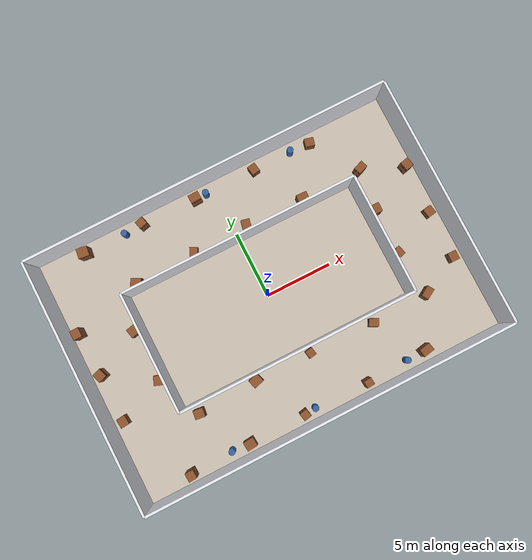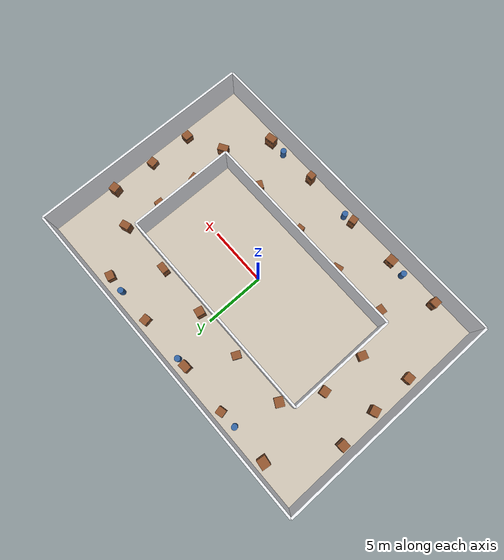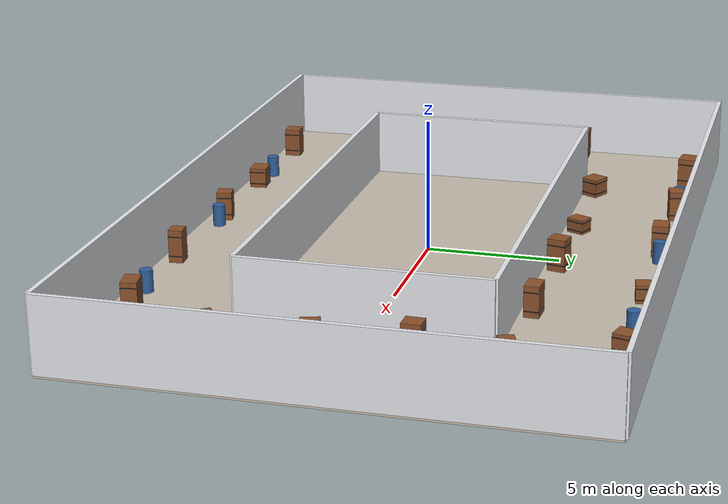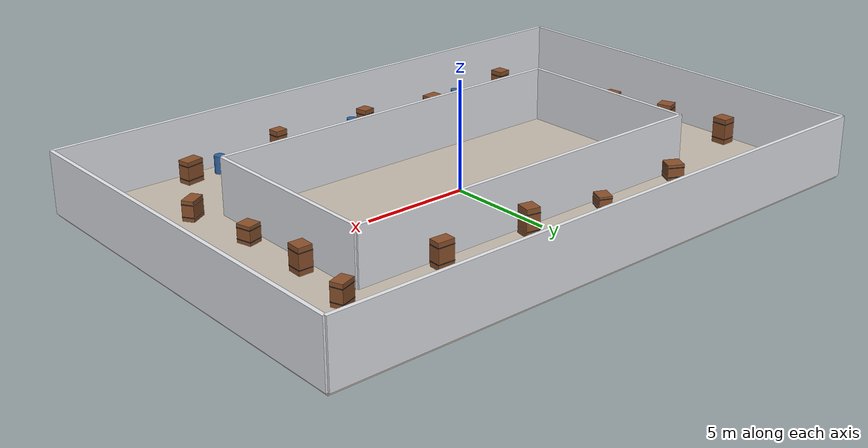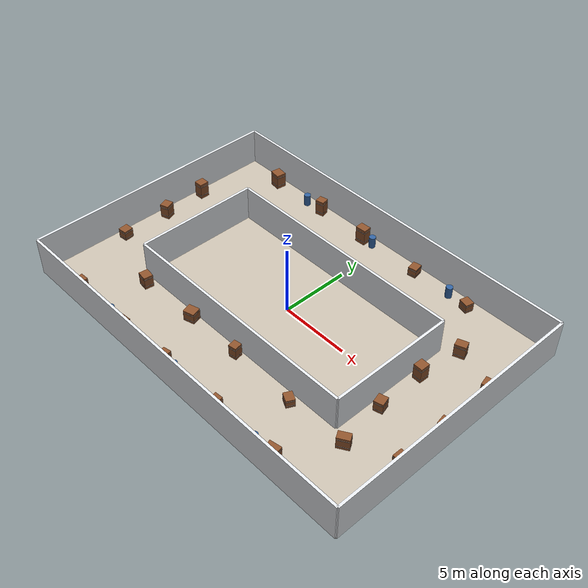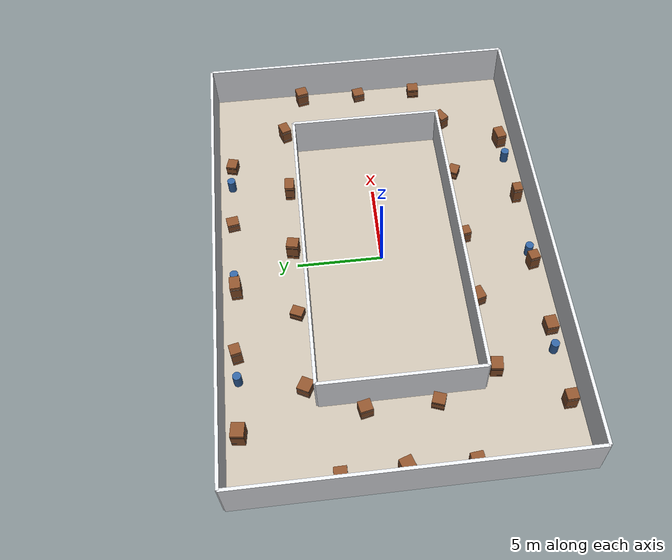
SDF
<sdf version="1.7">
 <world name="flat_M1">
  <model name="flat_M1_structure">
   <static>true</static>
   <link name="structure">
    <collision name="ground_floor_collision">
     <pose>0 0 -0.12 0 0 0</pose>
     <geometry><box><size>28 19 0.24</size></box></geometry>
     <max_contacts>40</max_contacts>
     <surface>
      <friction><ode><mu>2</mu><mu2>2</mu2></ode></friction>
      <contact><ode><kp>1e7</kp><kd>1000</kd><max_vel>0.1</max_vel><min_depth>0.001</min_depth></ode></contact>
     </surface>
    </collision>
    <visual name="ground_floor_visual">
     <pose>0 0 -0.12 0 0 0</pose>
     <geometry><box><size>28 19 0.24</size></box></geometry>
     <material><ambient>0.78 0.74 0.68 1</ambient><diffuse>0.78 0.74 0.68 1</diffuse></material>
    </visual>
    <collision name="outer_south_wall_0_collision">
     <pose>0 -9.5 1.28 0 0 0</pose>
     <geometry><box><size>28 0.18 2.8</size></box></geometry>
     <max_contacts>40</max_contacts>
     <surface>
      <friction><ode><mu>2</mu><mu2>2</mu2></ode></friction>
      <contact><ode><kp>1e7</kp><kd>1000</kd><max_vel>0.1</max_vel><min_depth>0.001</min_depth></ode></contact>
     </surface>
    </collision>
    <visual name="outer_south_wall_0_visual">
     <pose>0 -9.5 1.28 0 0 0</pose>
     <geometry><box><size>28 0.18 2.8</size></box></geometry>
     <material><ambient>0.90 0.91 0.93 1</ambient><diffuse>0.90 0.91 0.93 1</diffuse></material>
    </visual>
    <collision name="outer_north_wall_0_collision">
     <pose>0 9.5 1.28 0 0 0</pose>
     <geometry><box><size>28 0.18 2.8</size></box></geometry>
     <max_contacts>40</max_contacts>
     <surface>
      <friction><ode><mu>2</mu><mu2>2</mu2></ode></friction>
      <contact><ode><kp>1e7</kp><kd>1000</kd><max_vel>0.1</max_vel><min_depth>0.001</min_depth></ode></contact>
     </surface>
    </collision>
    <visual name="outer_north_wall_0_visual">
     <pose>0 9.5 1.28 0 0 0</pose>
     <geometry><box><size>28 0.18 2.8</size></box></geometry>
     <material><ambient>0.90 0.91 0.93 1</ambient><diffuse>0.90 0.91 0.93 1</diffuse></material>
    </visual>
    <collision name="outer_west_wall_0_collision">
     <pose>-14 0 1.28 0 0 1.57079633</pose>
     <geometry><box><size>19 0.18 2.8</size></box></geometry>
     <max_contacts>40</max_contacts>
     <surface>
      <friction><ode><mu>2</mu><mu2>2</mu2></ode></friction>
      <contact><ode><kp>1e7</kp><kd>1000</kd><max_vel>0.1</max_vel><min_depth>0.001</min_depth></ode></contact>
     </surface>
    </collision>
    <visual name="outer_west_wall_0_visual">
     <pose>-14 0 1.28 0 0 1.57079633</pose>
     <geometry><box><size>19 0.18 2.8</size></box></geometry>
     <material><ambient>0.90 0.91 0.93 1</ambient><diffuse>0.90 0.91 0.93 1</diffuse></material>
    </visual>
    <collision name="outer_east_wall_0_collision">
     <pose>14 0 1.28 0 0 1.57079633</pose>
     <geometry><box><size>19 0.18 2.8</size></box></geometry>
     <max_contacts>40</max_contacts>
     <surface>
      <friction><ode><mu>2</mu><mu2>2</mu2></ode></friction>
      <contact><ode><kp>1e7</kp><kd>1000</kd><max_vel>0.1</max_vel><min_depth>0.001</min_depth></ode></contact>
     </surface>
    </collision>
    <visual name="outer_east_wall_0_visual">
     <pose>14 0 1.28 0 0 1.57079633</pose>
     <geometry><box><size>19 0.18 2.8</size></box></geometry>
     <material><ambient>0.90 0.91 0.93 1</ambient><diffuse>0.90 0.91 0.93 1</diffuse></material>
    </visual>
    <collision name="courtyard_wall_0_collision">
     <pose>0 -4.5 1.23 0 0 0</pose>
     <geometry><box><size>18 0.18 2.7</size></box></geometry>
     <max_contacts>40</max_contacts>
     <surface>
      <friction><ode><mu>2</mu><mu2>2</mu2></ode></friction>
      <contact><ode><kp>1e7</kp><kd>1000</kd><max_vel>0.1</max_vel><min_depth>0.001</min_depth></ode></contact>
     </surface>
    </collision>
    <visual name="courtyard_wall_0_visual">
     <pose>0 -4.5 1.23 0 0 0</pose>
     <geometry><box><size>18 0.18 2.7</size></box></geometry>
     <material><ambient>0.90 0.91 0.93 1</ambient><diffuse>0.90 0.91 0.93 1</diffuse></material>
    </visual>
    <collision name="courtyard_wall_0_part1_collision">
     <pose>9 0 1.23 0 0 1.57079633</pose>
     <geometry><box><size>9 0.18 2.7</size></box></geometry>
     <max_contacts>40</max_contacts>
     <surface>
      <friction><ode><mu>2</mu><mu2>2</mu2></ode></friction>
      <contact><ode><kp>1e7</kp><kd>1000</kd><max_vel>0.1</max_vel><min_depth>0.001</min_depth></ode></contact>
     </surface>
    </collision>
    <visual name="courtyard_wall_0_part1_visual">
     <pose>9 0 1.23 0 0 1.57079633</pose>
     <geometry><box><size>9 0.18 2.7</size></box></geometry>
     <material><ambient>0.90 0.91 0.93 1</ambient><diffuse>0.90 0.91 0.93 1</diffuse></material>
    </visual>
    <collision name="courtyard_wall_0_part2_collision">
     <pose>0 4.5 1.23 0 0 3.14159265</pose>
     <geometry><box><size>18 0.18 2.7</size></box></geometry>
     <max_contacts>40</max_contacts>
     <surface>
      <friction><ode><mu>2</mu><mu2>2</mu2></ode></friction>
      <contact><ode><kp>1e7</kp><kd>1000</kd><max_vel>0.1</max_vel><min_depth>0.001</min_depth></ode></contact>
     </surface>
    </collision>
    <visual name="courtyard_wall_0_part2_visual">
     <pose>0 4.5 1.23 0 0 3.14159265</pose>
     <geometry><box><size>18 0.18 2.7</size></box></geometry>
     <material><ambient>0.90 0.91 0.93 1</ambient><diffuse>0.90 0.91 0.93 1</diffuse></material>
    </visual>
    <collision name="courtyard_wall_0_part3_collision">
     <pose>-9 0 1.23 0 0 -1.57079633</pose>
     <geometry><box><size>9 0.18 2.7</size></box></geometry>
     <max_contacts>40</max_contacts>
     <surface>
      <friction><ode><mu>2</mu><mu2>2</mu2></ode></friction>
      <contact><ode><kp>1e7</kp><kd>1000</kd><max_vel>0.1</max_vel><min_depth>0.001</min_depth></ode></contact>
     </surface>
    </collision>
    <visual name="courtyard_wall_0_part3_visual">
     <pose>-9 0 1.23 0 0 -1.57079633</pose>
     <geometry><box><size>9 0.18 2.7</size></box></geometry>
     <material><ambient>0.90 0.91 0.93 1</ambient><diffuse>0.90 0.91 0.93 1</diffuse></material>
    </visual>
    <collision name="corridor_crate0_prop_collision">
     <pose>-10.4391132 -8.74933051 0.584138986 0 0 0.0510764548</pose>
     <geometry><box><size>0.623898544 0.650770771 1.16827797</size></box></geometry>
     <max_contacts>40</max_contacts>
     <surface>
      <friction><ode><mu>2</mu><mu2>2</mu2></ode></friction>
      <contact><ode><kp>1e7</kp><kd>1000</kd><max_vel>0.1</max_vel><min_depth>0.001</min_depth></ode></contact>
     </surface>
    </collision>
    <visual name="corridor_crate0_prop_visual">
     <pose>-10.4391132 -8.74933051 0.584138986 0 0 0.0510764548</pose>
     <geometry><box><size>0.623898544 0.650770771 1.16827797</size></box></geometry>
     <material><ambient>0.55 0.32 0.17 1</ambient><diffuse>0.55 0.32 0.17 1</diffuse></material>
    </visual>
    <visual name="corridor_crate0_strap_-1_visual">
     <pose>-10.4391132 -8.74933051 0.233655594 0 0 0.0510764548</pose>
     <geometry><box><size>0.635898544 0.662770771 0.035</size></box></geometry>
     <material><ambient>0.15 0.18 0.21 1</ambient><diffuse>0.15 0.18 0.21 1</diffuse></material>
    </visual>
    <visual name="corridor_crate0_strap_1_visual">
     <pose>-10.4391132 -8.74933051 0.934622377 0 0 0.0510764548</pose>
     <geometry><box><size>0.635898544 0.662770771 0.035</size></box></geometry>
     <material><ambient>0.15 0.18 0.21 1</ambient><diffuse>0.15 0.18 0.21 1</diffuse></material>
    </visual>
    <collision name="corridor_crate1_prop_collision">
     <pose>-8.09571075 -5.24803806 0.485445364 0 0 -0.126055236</pose>
     <geometry><box><size>0.729410916 0.656473399 0.970890729</size></box></geometry>
     <max_contacts>40</max_contacts>
     <surface>
      <friction><ode><mu>2</mu><mu2>2</mu2></ode></friction>
      <contact><ode><kp>1e7</kp><kd>1000</kd><max_vel>0.1</max_vel><min_depth>0.001</min_depth></ode></contact>
     </surface>
    </collision>
    <visual name="corridor_crate1_prop_visual">
     <pose>-8.09571075 -5.24803806 0.485445364 0 0 -0.126055236</pose>
     <geometry><box><size>0.729410916 0.656473399 0.970890729</size></box></geometry>
     <material><ambient>0.55 0.32 0.17 1</ambient><diffuse>0.55 0.32 0.17 1</diffuse></material>
    </visual>
    <visual name="corridor_crate1_strap_-1_visual">
     <pose>-8.09571075 -5.24803806 0.194178146 0 0 -0.126055236</pose>
     <geometry><box><size>0.741410916 0.668473399 0.035</size></box></geometry>
     <material><ambient>0.15 0.18 0.21 1</ambient><diffuse>0.15 0.18 0.21 1</diffuse></material>
    </visual>
    <visual name="corridor_crate1_strap_1_visual">
     <pose>-8.09571075 -5.24803806 0.776712583 0 0 -0.126055236</pose>
     <geometry><box><size>0.741410916 0.668473399 0.035</size></box></geometry>
     <material><ambient>0.15 0.18 0.21 1</ambient><diffuse>0.15 0.18 0.21 1</diffuse></material>
    </visual>
    <collision name="corridor_bin_prop2_collision">
     <pose>-7.24571075 -8.65 0.42 0 0 0</pose>
     <geometry><cylinder><radius>0.24</radius><length>0.84</length></cylinder></geometry>
     <max_contacts>40</max_contacts>
     <surface>
      <friction><ode><mu>2</mu><mu2>2</mu2></ode></friction>
      <contact><ode><kp>1e7</kp><kd>1000</kd><max_vel>0.1</max_vel><min_depth>0.001</min_depth></ode></contact>
     </surface>
    </collision>
    <visual name="corridor_bin_prop2_visual">
     <pose>-7.24571075 -8.65 0.42 0 0 0</pose>
     <geometry><cylinder><radius>0.24</radius><length>0.84</length></cylinder></geometry>
     <material><ambient>0.19 0.38 0.62 1</ambient><diffuse>0.19 0.38 0.62 1</diffuse></material>
    </visual>
    <collision name="corridor_crate3_prop_collision">
     <pose>-5.87313101 -8.76571012 0.40294038 0 0 0.0885721272</pose>
     <geometry><box><size>0.788195609 0.672251853 0.805880761</size></box></geometry>
     <max_contacts>40</max_contacts>
     <surface>
      <friction><ode><mu>2</mu><mu2>2</mu2></ode></friction>
      <contact><ode><kp>1e7</kp><kd>1000</kd><max_vel>0.1</max_vel><min_depth>0.001</min_depth></ode></contact>
     </surface>
    </collision>
    <visual name="corridor_crate3_prop_visual">
     <pose>-5.87313101 -8.76571012 0.40294038 0 0 0.0885721272</pose>
     <geometry><box><size>0.788195609 0.672251853 0.805880761</size></box></geometry>
     <material><ambient>0.55 0.32 0.17 1</ambient><diffuse>0.55 0.32 0.17 1</diffuse></material>
    </visual>
    <visual name="corridor_crate3_strap_-1_visual">
     <pose>-5.87313101 -8.76571012 0.161176152 0 0 0.0885721272</pose>
     <geometry><box><size>0.800195609 0.684251853 0.035</size></box></geometry>
     <material><ambient>0.15 0.18 0.21 1</ambient><diffuse>0.15 0.18 0.21 1</diffuse></material>
    </visual>
    <visual name="corridor_crate3_strap_1_visual">
     <pose>-5.87313101 -8.76571012 0.644704609 0 0 0.0885721272</pose>
     <geometry><box><size>0.800195609 0.684251853 0.035</size></box></geometry>
     <material><ambient>0.15 0.18 0.21 1</ambient><diffuse>0.15 0.18 0.21 1</diffuse></material>
    </visual>
    <collision name="corridor_crate4_prop_collision">
     <pose>-3.53114342 -5.04508739 0.40932202 0 0 0.28860341</pose>
     <geometry><box><size>0.806827167 0.709404613 0.818644041</size></box></geometry>
     <max_contacts>40</max_contacts>
     <surface>
      <friction><ode><mu>2</mu><mu2>2</mu2></ode></friction>
      <contact><ode><kp>1e7</kp><kd>1000</kd><max_vel>0.1</max_vel><min_depth>0.001</min_depth></ode></contact>
     </surface>
    </collision>
    <visual name="corridor_crate4_prop_visual">
     <pose>-3.53114342 -5.04508739 0.40932202 0 0 0.28860341</pose>
     <geometry><box><size>0.806827167 0.709404613 0.818644041</size></box></geometry>
     <material><ambient>0.55 0.32 0.17 1</ambient><diffuse>0.55 0.32 0.17 1</diffuse></material>
    </visual>
    <visual name="corridor_crate4_strap_-1_visual">
     <pose>-3.53114342 -5.04508739 0.163728808 0 0 0.28860341</pose>
     <geometry><box><size>0.818827167 0.721404613 0.035</size></box></geometry>
     <material><ambient>0.15 0.18 0.21 1</ambient><diffuse>0.15 0.18 0.21 1</diffuse></material>
    </visual>
    <visual name="corridor_crate4_strap_1_visual">
     <pose>-3.53114342 -5.04508739 0.654915233 0 0 0.28860341</pose>
     <geometry><box><size>0.818827167 0.721404613 0.035</size></box></geometry>
     <material><ambient>0.15 0.18 0.21 1</ambient><diffuse>0.15 0.18 0.21 1</diffuse></material>
    </visual>
    <collision name="corridor_crate5_prop_collision">
     <pose>-1.52325666 -8.69519261 0.567213205 0 0 0.193719696</pose>
     <geometry><box><size>0.589987426 0.591617913 1.13442641</size></box></geometry>
     <max_contacts>40</max_contacts>
     <surface>
      <friction><ode><mu>2</mu><mu2>2</mu2></ode></friction>
      <contact><ode><kp>1e7</kp><kd>1000</kd><max_vel>0.1</max_vel><min_depth>0.001</min_depth></ode></contact>
     </surface>
    </collision>
    <visual name="corridor_crate5_prop_visual">
     <pose>-1.52325666 -8.69519261 0.567213205 0 0 0.193719696</pose>
     <geometry><box><size>0.589987426 0.591617913 1.13442641</size></box></geometry>
     <material><ambient>0.55 0.32 0.17 1</ambient><diffuse>0.55 0.32 0.17 1</diffuse></material>
    </visual>
    <visual name="corridor_crate5_strap_-1_visual">
     <pose>-1.52325666 -8.69519261 0.226885282 0 0 0.193719696</pose>
     <geometry><box><size>0.601987426 0.603617913 0.035</size></box></geometry>
     <material><ambient>0.15 0.18 0.21 1</ambient><diffuse>0.15 0.18 0.21 1</diffuse></material>
    </visual>
    <visual name="corridor_crate5_strap_1_visual">
     <pose>-1.52325666 -8.69519261 0.907541128 0 0 0.193719696</pose>
     <geometry><box><size>0.601987426 0.603617913 0.035</size></box></geometry>
     <material><ambient>0.15 0.18 0.21 1</ambient><diffuse>0.15 0.18 0.21 1</diffuse></material>
    </visual>
    <collision name="corridor_bin_prop6_collision">
     <pose>-0.673256663 -8.65 0.42 0 0 0</pose>
     <geometry><cylinder><radius>0.24</radius><length>0.84</length></cylinder></geometry>
     <max_contacts>40</max_contacts>
     <surface>
      <friction><ode><mu>2</mu><mu2>2</mu2></ode></friction>
      <contact><ode><kp>1e7</kp><kd>1000</kd><max_vel>0.1</max_vel><min_depth>0.001</min_depth></ode></contact>
     </surface>
    </collision>
    <visual name="corridor_bin_prop6_visual">
     <pose>-0.673256663 -8.65 0.42 0 0 0</pose>
     <geometry><cylinder><radius>0.24</radius><length>0.84</length></cylinder></geometry>
     <material><ambient>0.19 0.38 0.62 1</ambient><diffuse>0.19 0.38 0.62 1</diffuse></material>
    </visual>
    <collision name="corridor_crate7_prop_collision">
     <pose>0.795353508 -5.06970358 0.485820954 0 0 0.159231207</pose>
     <geometry><box><size>0.569680961 0.587635797 0.971641908</size></box></geometry>
     <max_contacts>40</max_contacts>
     <surface>
      <friction><ode><mu>2</mu><mu2>2</mu2></ode></friction>
      <contact><ode><kp>1e7</kp><kd>1000</kd><max_vel>0.1</max_vel><min_depth>0.001</min_depth></ode></contact>
     </surface>
    </collision>
    <visual name="corridor_crate7_prop_visual">
     <pose>0.795353508 -5.06970358 0.485820954 0 0 0.159231207</pose>
     <geometry><box><size>0.569680961 0.587635797 0.971641908</size></box></geometry>
     <material><ambient>0.55 0.32 0.17 1</ambient><diffuse>0.55 0.32 0.17 1</diffuse></material>
    </visual>
    <visual name="corridor_crate7_strap_-1_visual">
     <pose>0.795353508 -5.06970358 0.194328382 0 0 0.159231207</pose>
     <geometry><box><size>0.581680961 0.599635797 0.035</size></box></geometry>
     <material><ambient>0.15 0.18 0.21 1</ambient><diffuse>0.15 0.18 0.21 1</diffuse></material>
    </visual>
    <visual name="corridor_crate7_strap_1_visual">
     <pose>0.795353508 -5.06970358 0.777313527 0 0 0.159231207</pose>
     <geometry><box><size>0.581680961 0.599635797 0.035</size></box></geometry>
     <material><ambient>0.15 0.18 0.21 1</ambient><diffuse>0.15 0.18 0.21 1</diffuse></material>
    </visual>
    <collision name="corridor_crate8_prop_collision">
     <pose>3.44373011 -8.74055113 0.62995219 0 0 0.0694298871</pose>
     <geometry><box><size>0.587122318 0.53413736 1.25990438</size></box></geometry>
     <max_contacts>40</max_contacts>
     <surface>
      <friction><ode><mu>2</mu><mu2>2</mu2></ode></friction>
      <contact><ode><kp>1e7</kp><kd>1000</kd><max_vel>0.1</max_vel><min_depth>0.001</min_depth></ode></contact>
     </surface>
    </collision>
    <visual name="corridor_crate8_prop_visual">
     <pose>3.44373011 -8.74055113 0.62995219 0 0 0.0694298871</pose>
     <geometry><box><size>0.587122318 0.53413736 1.25990438</size></box></geometry>
     <material><ambient>0.55 0.32 0.17 1</ambient><diffuse>0.55 0.32 0.17 1</diffuse></material>
    </visual>
    <visual name="corridor_crate8_strap_-1_visual">
     <pose>3.44373011 -8.74055113 0.251980876 0 0 0.0694298871</pose>
     <geometry><box><size>0.599122318 0.54613736 0.035</size></box></geometry>
     <material><ambient>0.15 0.18 0.21 1</ambient><diffuse>0.15 0.18 0.21 1</diffuse></material>
    </visual>
    <visual name="corridor_crate8_strap_1_visual">
     <pose>3.44373011 -8.74055113 1.0079235 0 0 0.0694298871</pose>
     <geometry><box><size>0.599122318 0.54613736 0.035</size></box></geometry>
     <material><ambient>0.15 0.18 0.21 1</ambient><diffuse>0.15 0.18 0.21 1</diffuse></material>
    </visual>
    <collision name="corridor_crate9_prop_collision">
     <pose>5.81736115 -5.22856582 0.309149981 0 0 -0.464809586</pose>
     <geometry><box><size>0.703893586 0.598934875 0.618299961</size></box></geometry>
     <max_contacts>40</max_contacts>
     <surface>
      <friction><ode><mu>2</mu><mu2>2</mu2></ode></friction>
      <contact><ode><kp>1e7</kp><kd>1000</kd><max_vel>0.1</max_vel><min_depth>0.001</min_depth></ode></contact>
     </surface>
    </collision>
    <visual name="corridor_crate9_prop_visual">
     <pose>5.81736115 -5.22856582 0.309149981 0 0 -0.464809586</pose>
     <geometry><box><size>0.703893586 0.598934875 0.618299961</size></box></geometry>
     <material><ambient>0.55 0.32 0.17 1</ambient><diffuse>0.55 0.32 0.17 1</diffuse></material>
    </visual>
    <visual name="corridor_crate9_strap_-1_visual">
     <pose>5.81736115 -5.22856582 0.123659992 0 0 -0.464809586</pose>
     <geometry><box><size>0.715893586 0.610934875 0.035</size></box></geometry>
     <material><ambient>0.15 0.18 0.21 1</ambient><diffuse>0.15 0.18 0.21 1</diffuse></material>
    </visual>
    <visual name="corridor_crate9_strap_1_visual">
     <pose>5.81736115 -5.22856582 0.494639969 0 0 -0.464809586</pose>
     <geometry><box><size>0.715893586 0.610934875 0.035</size></box></geometry>
     <material><ambient>0.15 0.18 0.21 1</ambient><diffuse>0.15 0.18 0.21 1</diffuse></material>
    </visual>
    <collision name="corridor_bin_prop10_collision">
     <pose>6.66736115 -8.65 0.42 0 0 0</pose>
     <geometry><cylinder><radius>0.24</radius><length>0.84</length></cylinder></geometry>
     <max_contacts>40</max_contacts>
     <surface>
      <friction><ode><mu>2</mu><mu2>2</mu2></ode></friction>
      <contact><ode><kp>1e7</kp><kd>1000</kd><max_vel>0.1</max_vel><min_depth>0.001</min_depth></ode></contact>
     </surface>
    </collision>
    <visual name="corridor_bin_prop10_visual">
     <pose>6.66736115 -8.65 0.42 0 0 0</pose>
     <geometry><cylinder><radius>0.24</radius><length>0.84</length></cylinder></geometry>
     <material><ambient>0.19 0.38 0.62 1</ambient><diffuse>0.19 0.38 0.62 1</diffuse></material>
    </visual>
    <collision name="corridor_crate11_prop_collision">
     <pose>8.14415994 -8.59057292 0.527691616 0 0 0.182611482</pose>
     <geometry><box><size>0.849994366 0.594230668 1.05538323</size></box></geometry>
     <max_contacts>40</max_contacts>
     <surface>
      <friction><ode><mu>2</mu><mu2>2</mu2></ode></friction>
      <contact><ode><kp>1e7</kp><kd>1000</kd><max_vel>0.1</max_vel><min_depth>0.001</min_depth></ode></contact>
     </surface>
    </collision>
    <visual name="corridor_crate11_prop_visual">
     <pose>8.14415994 -8.59057292 0.527691616 0 0 0.182611482</pose>
     <geometry><box><size>0.849994366 0.594230668 1.05538323</size></box></geometry>
     <material><ambient>0.55 0.32 0.17 1</ambient><diffuse>0.55 0.32 0.17 1</diffuse></material>
    </visual>
    <visual name="corridor_crate11_strap_-1_visual">
     <pose>8.14415994 -8.59057292 0.211076647 0 0 0.182611482</pose>
     <geometry><box><size>0.861994366 0.606230668 0.035</size></box></geometry>
     <material><ambient>0.15 0.18 0.21 1</ambient><diffuse>0.15 0.18 0.21 1</diffuse></material>
    </visual>
    <visual name="corridor_crate11_strap_1_visual">
     <pose>8.14415994 -8.59057292 0.844306586 0 0 0.182611482</pose>
     <geometry><box><size>0.861994366 0.606230668 0.035</size></box></geometry>
     <material><ambient>0.15 0.18 0.21 1</ambient><diffuse>0.15 0.18 0.21 1</diffuse></material>
    </visual>
    <collision name="corridor_crate12_prop_collision">
     <pose>10.1826818 -5.08349473 0.461072056 0 0 0.542073101</pose>
     <geometry><box><size>0.847623976 0.551113294 0.922144113</size></box></geometry>
     <max_contacts>40</max_contacts>
     <surface>
      <friction><ode><mu>2</mu><mu2>2</mu2></ode></friction>
      <contact><ode><kp>1e7</kp><kd>1000</kd><max_vel>0.1</max_vel><min_depth>0.001</min_depth></ode></contact>
     </surface>
    </collision>
    <visual name="corridor_crate12_prop_visual">
     <pose>10.1826818 -5.08349473 0.461072056 0 0 0.542073101</pose>
     <geometry><box><size>0.847623976 0.551113294 0.922144113</size></box></geometry>
     <material><ambient>0.55 0.32 0.17 1</ambient><diffuse>0.55 0.32 0.17 1</diffuse></material>
    </visual>
    <visual name="corridor_crate12_strap_-1_visual">
     <pose>10.1826818 -5.08349473 0.184428823 0 0 0.542073101</pose>
     <geometry><box><size>0.859623976 0.563113294 0.035</size></box></geometry>
     <material><ambient>0.15 0.18 0.21 1</ambient><diffuse>0.15 0.18 0.21 1</diffuse></material>
    </visual>
    <visual name="corridor_crate12_strap_1_visual">
     <pose>10.1826818 -5.08349473 0.73771529 0 0 0.542073101</pose>
     <geometry><box><size>0.859623976 0.563113294 0.035</size></box></geometry>
     <material><ambient>0.15 0.18 0.21 1</ambient><diffuse>0.15 0.18 0.21 1</diffuse></material>
    </visual>
    <collision name="corridor_crate13_prop_collision">
     <pose>-13.1340661 -3.311781 0.37254083 0 0 0.105187792</pose>
     <geometry><box><size>0.65 0.7 0.74508166</size></box></geometry>
     <max_contacts>40</max_contacts>
     <surface>
      <friction><ode><mu>2</mu><mu2>2</mu2></ode></friction>
      <contact><ode><kp>1e7</kp><kd>1000</kd><max_vel>0.1</max_vel><min_depth>0.001</min_depth></ode></contact>
     </surface>
    </collision>
    <visual name="corridor_crate13_prop_visual">
     <pose>-13.1340661 -3.311781 0.37254083 0 0 0.105187792</pose>
     <geometry><box><size>0.65 0.7 0.74508166</size></box></geometry>
     <material><ambient>0.55 0.32 0.17 1</ambient><diffuse>0.55 0.32 0.17 1</diffuse></material>
    </visual>
    <visual name="corridor_crate13_strap_-1_visual">
     <pose>-13.1340661 -3.311781 0.149016332 0 0 0.105187792</pose>
     <geometry><box><size>0.662 0.712 0.035</size></box></geometry>
     <material><ambient>0.15 0.18 0.21 1</ambient><diffuse>0.15 0.18 0.21 1</diffuse></material>
    </visual>
    <visual name="corridor_crate13_strap_1_visual">
     <pose>-13.1340661 -3.311781 0.596065328 0 0 0.105187792</pose>
     <geometry><box><size>0.662 0.712 0.035</size></box></geometry>
     <material><ambient>0.15 0.18 0.21 1</ambient><diffuse>0.15 0.18 0.21 1</diffuse></material>
    </visual>
    <collision name="corridor_crate14_prop_collision">
     <pose>-9.67070651 -1.87581081 0.36767078 0 0 -0.354525286</pose>
     <geometry><box><size>0.65 0.7 0.735341561</size></box></geometry>
     <max_contacts>40</max_contacts>
     <surface>
      <friction><ode><mu>2</mu><mu2>2</mu2></ode></friction>
      <contact><ode><kp>1e7</kp><kd>1000</kd><max_vel>0.1</max_vel><min_depth>0.001</min_depth></ode></contact>
     </surface>
    </collision>
    <visual name="corridor_crate14_prop_visual">
     <pose>-9.67070651 -1.87581081 0.36767078 0 0 -0.354525286</pose>
     <geometry><box><size>0.65 0.7 0.735341561</size></box></geometry>
     <material><ambient>0.55 0.32 0.17 1</ambient><diffuse>0.55 0.32 0.17 1</diffuse></material>
    </visual>
    <visual name="corridor_crate14_strap_-1_visual">
     <pose>-9.67070651 -1.87581081 0.147068312 0 0 -0.354525286</pose>
     <geometry><box><size>0.662 0.712 0.035</size></box></geometry>
     <material><ambient>0.15 0.18 0.21 1</ambient><diffuse>0.15 0.18 0.21 1</diffuse></material>
    </visual>
    <visual name="corridor_crate14_strap_1_visual">
     <pose>-9.67070651 -1.87581081 0.588273249 0 0 -0.354525286</pose>
     <geometry><box><size>0.662 0.712 0.035</size></box></geometry>
     <material><ambient>0.15 0.18 0.21 1</ambient><diffuse>0.15 0.18 0.21 1</diffuse></material>
    </visual>
    <collision name="corridor_crate15_prop_collision">
     <pose>-13.0948562 0.28872503 0.541483496 0 0 0.333859111</pose>
     <geometry><box><size>0.65 0.7 1.08296699</size></box></geometry>
     <max_contacts>40</max_contacts>
     <surface>
      <friction><ode><mu>2</mu><mu2>2</mu2></ode></friction>
      <contact><ode><kp>1e7</kp><kd>1000</kd><max_vel>0.1</max_vel><min_depth>0.001</min_depth></ode></contact>
     </surface>
    </collision>
    <visual name="corridor_crate15_prop_visual">
     <pose>-13.0948562 0.28872503 0.541483496 0 0 0.333859111</pose>
     <geometry><box><size>0.65 0.7 1.08296699</size></box></geometry>
     <material><ambient>0.55 0.32 0.17 1</ambient><diffuse>0.55 0.32 0.17 1</diffuse></material>
    </visual>
    <visual name="corridor_crate15_strap_-1_visual">
     <pose>-13.0948562 0.28872503 0.216593398 0 0 0.333859111</pose>
     <geometry><box><size>0.662 0.712 0.035</size></box></geometry>
     <material><ambient>0.15 0.18 0.21 1</ambient><diffuse>0.15 0.18 0.21 1</diffuse></material>
    </visual>
    <visual name="corridor_crate15_strap_1_visual">
     <pose>-13.0948562 0.28872503 0.866373593 0 0 0.333859111</pose>
     <geometry><box><size>0.662 0.712 0.035</size></box></geometry>
     <material><ambient>0.15 0.18 0.21 1</ambient><diffuse>0.15 0.18 0.21 1</diffuse></material>
    </visual>
    <collision name="corridor_crate16_prop_collision">
     <pose>-9.70425913 2.0390057 0.445917651 0 0 0.214502201</pose>
     <geometry><box><size>0.65 0.7 0.891835302</size></box></geometry>
     <max_contacts>40</max_contacts>
     <surface>
      <friction><ode><mu>2</mu><mu2>2</mu2></ode></friction>
      <contact><ode><kp>1e7</kp><kd>1000</kd><max_vel>0.1</max_vel><min_depth>0.001</min_depth></ode></contact>
     </surface>
    </collision>
    <visual name="corridor_crate16_prop_visual">
     <pose>-9.70425913 2.0390057 0.445917651 0 0 0.214502201</pose>
     <geometry><box><size>0.65 0.7 0.891835302</size></box></geometry>
     <material><ambient>0.55 0.32 0.17 1</ambient><diffuse>0.55 0.32 0.17 1</diffuse></material>
    </visual>
    <visual name="corridor_crate16_strap_-1_visual">
     <pose>-9.70425913 2.0390057 0.17836706 0 0 0.214502201</pose>
     <geometry><box><size>0.662 0.712 0.035</size></box></geometry>
     <material><ambient>0.15 0.18 0.21 1</ambient><diffuse>0.15 0.18 0.21 1</diffuse></material>
    </visual>
    <visual name="corridor_crate16_strap_1_visual">
     <pose>-9.70425913 2.0390057 0.713468242 0 0 0.214502201</pose>
     <geometry><box><size>0.662 0.712 0.035</size></box></geometry>
     <material><ambient>0.15 0.18 0.21 1</ambient><diffuse>0.15 0.18 0.21 1</diffuse></material>
    </visual>
    <collision name="corridor_crate17_prop_collision">
     <pose>-13.2669462 3.64975533 0.610773015 0 0 0.0127748784</pose>
     <geometry><box><size>0.65 0.7 1.22154603</size></box></geometry>
     <max_contacts>40</max_contacts>
     <surface>
      <friction><ode><mu>2</mu><mu2>2</mu2></ode></friction>
      <contact><ode><kp>1e7</kp><kd>1000</kd><max_vel>0.1</max_vel><min_depth>0.001</min_depth></ode></contact>
     </surface>
    </collision>
    <visual name="corridor_crate17_prop_visual">
     <pose>-13.2669462 3.64975533 0.610773015 0 0 0.0127748784</pose>
     <geometry><box><size>0.65 0.7 1.22154603</size></box></geometry>
     <material><ambient>0.55 0.32 0.17 1</ambient><diffuse>0.55 0.32 0.17 1</diffuse></material>
    </visual>
    <visual name="corridor_crate17_strap_-1_visual">
     <pose>-13.2669462 3.64975533 0.244309206 0 0 0.0127748784</pose>
     <geometry><box><size>0.662 0.712 0.035</size></box></geometry>
     <material><ambient>0.15 0.18 0.21 1</ambient><diffuse>0.15 0.18 0.21 1</diffuse></material>
    </visual>
    <visual name="corridor_crate17_strap_1_visual">
     <pose>-13.2669462 3.64975533 0.977236824 0 0 0.0127748784</pose>
     <geometry><box><size>0.662 0.712 0.035</size></box></geometry>
     <material><ambient>0.15 0.18 0.21 1</ambient><diffuse>0.15 0.18 0.21 1</diffuse></material>
    </visual>
    <collision name="corridor_crate18_prop_collision">
     <pose>-10.3675539 8.66375475 0.577560724 0 0 -0.126530498</pose>
     <geometry><box><size>0.798944173 0.722084242 1.15512145</size></box></geometry>
     <max_contacts>40</max_contacts>
     <surface>
      <friction><ode><mu>2</mu><mu2>2</mu2></ode></friction>
      <contact><ode><kp>1e7</kp><kd>1000</kd><max_vel>0.1</max_vel><min_depth>0.001</min_depth></ode></contact>
     </surface>
    </collision>
    <visual name="corridor_crate18_prop_visual">
     <pose>-10.3675539 8.66375475 0.577560724 0 0 -0.126530498</pose>
     <geometry><box><size>0.798944173 0.722084242 1.15512145</size></box></geometry>
     <material><ambient>0.55 0.32 0.17 1</ambient><diffuse>0.55 0.32 0.17 1</diffuse></material>
    </visual>
    <visual name="corridor_crate18_strap_-1_visual">
     <pose>-10.3675539 8.66375475 0.23102429 0 0 -0.126530498</pose>
     <geometry><box><size>0.810944173 0.734084242 0.035</size></box></geometry>
     <material><ambient>0.15 0.18 0.21 1</ambient><diffuse>0.15 0.18 0.21 1</diffuse></material>
    </visual>
    <visual name="corridor_crate18_strap_1_visual">
     <pose>-10.3675539 8.66375475 0.924097159 0 0 -0.126530498</pose>
     <geometry><box><size>0.810944173 0.734084242 0.035</size></box></geometry>
     <material><ambient>0.15 0.18 0.21 1</ambient><diffuse>0.15 0.18 0.21 1</diffuse></material>
    </visual>
    <collision name="corridor_crate19_prop_collision">
     <pose>-8.03644528 5.05697835 0.364325722 0 0 -0.489709747</pose>
     <geometry><box><size>0.761791939 0.715558259 0.728651443</size></box></geometry>
     <max_contacts>40</max_contacts>
     <surface>
      <friction><ode><mu>2</mu><mu2>2</mu2></ode></friction>
      <contact><ode><kp>1e7</kp><kd>1000</kd><max_vel>0.1</max_vel><min_depth>0.001</min_depth></ode></contact>
     </surface>
    </collision>
    <visual name="corridor_crate19_prop_visual">
     <pose>-8.03644528 5.05697835 0.364325722 0 0 -0.489709747</pose>
     <geometry><box><size>0.761791939 0.715558259 0.728651443</size></box></geometry>
     <material><ambient>0.55 0.32 0.17 1</ambient><diffuse>0.55 0.32 0.17 1</diffuse></material>
    </visual>
    <visual name="corridor_crate19_strap_-1_visual">
     <pose>-8.03644528 5.05697835 0.145730289 0 0 -0.489709747</pose>
     <geometry><box><size>0.773791939 0.727558259 0.035</size></box></geometry>
     <material><ambient>0.15 0.18 0.21 1</ambient><diffuse>0.15 0.18 0.21 1</diffuse></material>
    </visual>
    <visual name="corridor_crate19_strap_1_visual">
     <pose>-8.03644528 5.05697835 0.582921154 0 0 -0.489709747</pose>
     <geometry><box><size>0.773791939 0.727558259 0.035</size></box></geometry>
     <material><ambient>0.15 0.18 0.21 1</ambient><diffuse>0.15 0.18 0.21 1</diffuse></material>
    </visual>
    <collision name="corridor_bin_prop20_collision">
     <pose>-7.18644528 8.65 0.42 0 0 0</pose>
     <geometry><cylinder><radius>0.24</radius><length>0.84</length></cylinder></geometry>
     <max_contacts>40</max_contacts>
     <surface>
      <friction><ode><mu>2</mu><mu2>2</mu2></ode></friction>
      <contact><ode><kp>1e7</kp><kd>1000</kd><max_vel>0.1</max_vel><min_depth>0.001</min_depth></ode></contact>
     </surface>
    </collision>
    <visual name="corridor_bin_prop20_visual">
     <pose>-7.18644528 8.65 0.42 0 0 0</pose>
     <geometry><cylinder><radius>0.24</radius><length>0.84</length></cylinder></geometry>
     <material><ambient>0.19 0.38 0.62 1</ambient><diffuse>0.19 0.38 0.62 1</diffuse></material>
    </visual>
    <collision name="corridor_crate21_prop_collision">
     <pose>-5.73455183 8.67652253 0.600214182 0 0 0.228519391</pose>
     <geometry><box><size>0.637104433 0.588504897 1.20042836</size></box></geometry>
     <max_contacts>40</max_contacts>
     <surface>
      <friction><ode><mu>2</mu><mu2>2</mu2></ode></friction>
      <contact><ode><kp>1e7</kp><kd>1000</kd><max_vel>0.1</max_vel><min_depth>0.001</min_depth></ode></contact>
     </surface>
    </collision>
    <visual name="corridor_crate21_prop_visual">
     <pose>-5.73455183 8.67652253 0.600214182 0 0 0.228519391</pose>
     <geometry><box><size>0.637104433 0.588504897 1.20042836</size></box></geometry>
     <material><ambient>0.55 0.32 0.17 1</ambient><diffuse>0.55 0.32 0.17 1</diffuse></material>
    </visual>
    <visual name="corridor_crate21_strap_-1_visual">
     <pose>-5.73455183 8.67652253 0.240085673 0 0 0.228519391</pose>
     <geometry><box><size>0.649104433 0.600504897 0.035</size></box></geometry>
     <material><ambient>0.15 0.18 0.21 1</ambient><diffuse>0.15 0.18 0.21 1</diffuse></material>
    </visual>
    <visual name="corridor_crate21_strap_1_visual">
     <pose>-5.73455183 8.67652253 0.960342692 0 0 0.228519391</pose>
     <geometry><box><size>0.649104433 0.600504897 0.035</size></box></geometry>
     <material><ambient>0.15 0.18 0.21 1</ambient><diffuse>0.15 0.18 0.21 1</diffuse></material>
    </visual>
    <collision name="corridor_crate22_prop_collision">
     <pose>-3.36302284 5.19730484 0.282176236 0 0 -0.432097799</pose>
     <geometry><box><size>0.594809169 0.710942964 0.564352472</size></box></geometry>
     <max_contacts>40</max_contacts>
     <surface>
      <friction><ode><mu>2</mu><mu2>2</mu2></ode></friction>
      <contact><ode><kp>1e7</kp><kd>1000</kd><max_vel>0.1</max_vel><min_depth>0.001</min_depth></ode></contact>
     </surface>
    </collision>
    <visual name="corridor_crate22_prop_visual">
     <pose>-3.36302284 5.19730484 0.282176236 0 0 -0.432097799</pose>
     <geometry><box><size>0.594809169 0.710942964 0.564352472</size></box></geometry>
     <material><ambient>0.55 0.32 0.17 1</ambient><diffuse>0.55 0.32 0.17 1</diffuse></material>
    </visual>
    <visual name="corridor_crate22_strap_-1_visual">
     <pose>-3.36302284 5.19730484 0.112870494 0 0 -0.432097799</pose>
     <geometry><box><size>0.606809169 0.722942964 0.035</size></box></geometry>
     <material><ambient>0.15 0.18 0.21 1</ambient><diffuse>0.15 0.18 0.21 1</diffuse></material>
    </visual>
    <visual name="corridor_crate22_strap_1_visual">
     <pose>-3.36302284 5.19730484 0.451481978 0 0 -0.432097799</pose>
     <geometry><box><size>0.606809169 0.722942964 0.035</size></box></geometry>
     <material><ambient>0.15 0.18 0.21 1</ambient><diffuse>0.15 0.18 0.21 1</diffuse></material>
    </visual>
    <collision name="corridor_crate23_prop_collision">
     <pose>-1.50863707 8.58204418 0.621979301 0 0 0.0433633342</pose>
     <geometry><box><size>0.789837723 0.605452481 1.2439586</size></box></geometry>
     <max_contacts>40</max_contacts>
     <surface>
      <friction><ode><mu>2</mu><mu2>2</mu2></ode></friction>
      <contact><ode><kp>1e7</kp><kd>1000</kd><max_vel>0.1</max_vel><min_depth>0.001</min_depth></ode></contact>
     </surface>
    </collision>
    <visual name="corridor_crate23_prop_visual">
     <pose>-1.50863707 8.58204418 0.621979301 0 0 0.0433633342</pose>
     <geometry><box><size>0.789837723 0.605452481 1.2439586</size></box></geometry>
     <material><ambient>0.55 0.32 0.17 1</ambient><diffuse>0.55 0.32 0.17 1</diffuse></material>
    </visual>
    <visual name="corridor_crate23_strap_-1_visual">
     <pose>-1.50863707 8.58204418 0.24879172 0 0 0.0433633342</pose>
     <geometry><box><size>0.801837723 0.617452481 0.035</size></box></geometry>
     <material><ambient>0.15 0.18 0.21 1</ambient><diffuse>0.15 0.18 0.21 1</diffuse></material>
    </visual>
    <visual name="corridor_crate23_strap_1_visual">
     <pose>-1.50863707 8.58204418 0.995166882 0 0 0.0433633342</pose>
     <geometry><box><size>0.801837723 0.617452481 0.035</size></box></geometry>
     <material><ambient>0.15 0.18 0.21 1</ambient><diffuse>0.15 0.18 0.21 1</diffuse></material>
    </visual>
    <collision name="corridor_bin_prop24_collision">
     <pose>-0.658637068 8.65 0.42 0 0 0</pose>
     <geometry><cylinder><radius>0.24</radius><length>0.84</length></cylinder></geometry>
     <max_contacts>40</max_contacts>
     <surface>
      <friction><ode><mu>2</mu><mu2>2</mu2></ode></friction>
      <contact><ode><kp>1e7</kp><kd>1000</kd><max_vel>0.1</max_vel><min_depth>0.001</min_depth></ode></contact>
     </surface>
    </collision>
    <visual name="corridor_bin_prop24_visual">
     <pose>-0.658637068 8.65 0.42 0 0 0</pose>
     <geometry><cylinder><radius>0.24</radius><length>0.84</length></cylinder></geometry>
     <material><ambient>0.19 0.38 0.62 1</ambient><diffuse>0.19 0.38 0.62 1</diffuse></material>
    </visual>
    <collision name="corridor_crate25_prop_collision">
     <pose>0.891190891 5.15952519 0.619012721 0 0 -0.210409384</pose>
     <geometry><box><size>0.644271897 0.687613636 1.23802544</size></box></geometry>
     <max_contacts>40</max_contacts>
     <surface>
      <friction><ode><mu>2</mu><mu2>2</mu2></ode></friction>
      <contact><ode><kp>1e7</kp><kd>1000</kd><max_vel>0.1</max_vel><min_depth>0.001</min_depth></ode></contact>
     </surface>
    </collision>
    <visual name="corridor_crate25_prop_visual">
     <pose>0.891190891 5.15952519 0.619012721 0 0 -0.210409384</pose>
     <geometry><box><size>0.644271897 0.687613636 1.23802544</size></box></geometry>
     <material><ambient>0.55 0.32 0.17 1</ambient><diffuse>0.55 0.32 0.17 1</diffuse></material>
    </visual>
    <visual name="corridor_crate25_strap_-1_visual">
     <pose>0.891190891 5.15952519 0.247605089 0 0 -0.210409384</pose>
     <geometry><box><size>0.656271897 0.699613636 0.035</size></box></geometry>
     <material><ambient>0.15 0.18 0.21 1</ambient><diffuse>0.15 0.18 0.21 1</diffuse></material>
    </visual>
    <visual name="corridor_crate25_strap_1_visual">
     <pose>0.891190891 5.15952519 0.990420354 0 0 -0.210409384</pose>
     <geometry><box><size>0.656271897 0.699613636 0.035</size></box></geometry>
     <material><ambient>0.15 0.18 0.21 1</ambient><diffuse>0.15 0.18 0.21 1</diffuse></material>
    </visual>
    <collision name="corridor_crate26_prop_collision">
     <pose>3.25799382 8.6560249 0.342962951 0 0 0.164903086</pose>
     <geometry><box><size>0.622845223 0.70199547 0.685925902</size></box></geometry>
     <max_contacts>40</max_contacts>
     <surface>
      <friction><ode><mu>2</mu><mu2>2</mu2></ode></friction>
      <contact><ode><kp>1e7</kp><kd>1000</kd><max_vel>0.1</max_vel><min_depth>0.001</min_depth></ode></contact>
     </surface>
    </collision>
    <visual name="corridor_crate26_prop_visual">
     <pose>3.25799382 8.6560249 0.342962951 0 0 0.164903086</pose>
     <geometry><box><size>0.622845223 0.70199547 0.685925902</size></box></geometry>
     <material><ambient>0.55 0.32 0.17 1</ambient><diffuse>0.55 0.32 0.17 1</diffuse></material>
    </visual>
    <visual name="corridor_crate26_strap_-1_visual">
     <pose>3.25799382 8.6560249 0.13718518 0 0 0.164903086</pose>
     <geometry><box><size>0.634845223 0.71399547 0.035</size></box></geometry>
     <material><ambient>0.15 0.18 0.21 1</ambient><diffuse>0.15 0.18 0.21 1</diffuse></material>
    </visual>
    <visual name="corridor_crate26_strap_1_visual">
     <pose>3.25799382 8.6560249 0.548740721 0 0 0.164903086</pose>
     <geometry><box><size>0.634845223 0.71399547 0.035</size></box></geometry>
     <material><ambient>0.15 0.18 0.21 1</ambient><diffuse>0.15 0.18 0.21 1</diffuse></material>
    </visual>
    <collision name="corridor_crate27_prop_collision">
     <pose>5.39991429 5.09214188 0.578499517 0 0 -0.0457918046</pose>
     <geometry><box><size>0.796057808 0.555284504 1.15699903</size></box></geometry>
     <max_contacts>40</max_contacts>
     <surface>
      <friction><ode><mu>2</mu><mu2>2</mu2></ode></friction>
      <contact><ode><kp>1e7</kp><kd>1000</kd><max_vel>0.1</max_vel><min_depth>0.001</min_depth></ode></contact>
     </surface>
    </collision>
    <visual name="corridor_crate27_prop_visual">
     <pose>5.39991429 5.09214188 0.578499517 0 0 -0.0457918046</pose>
     <geometry><box><size>0.796057808 0.555284504 1.15699903</size></box></geometry>
     <material><ambient>0.55 0.32 0.17 1</ambient><diffuse>0.55 0.32 0.17 1</diffuse></material>
    </visual>
    <visual name="corridor_crate27_strap_-1_visual">
     <pose>5.39991429 5.09214188 0.231399807 0 0 -0.0457918046</pose>
     <geometry><box><size>0.808057808 0.567284504 0.035</size></box></geometry>
     <material><ambient>0.15 0.18 0.21 1</ambient><diffuse>0.15 0.18 0.21 1</diffuse></material>
    </visual>
    <visual name="corridor_crate27_strap_1_visual">
     <pose>5.39991429 5.09214188 0.925599227 0 0 -0.0457918046</pose>
     <geometry><box><size>0.808057808 0.567284504 0.035</size></box></geometry>
     <material><ambient>0.15 0.18 0.21 1</ambient><diffuse>0.15 0.18 0.21 1</diffuse></material>
    </visual>
    <collision name="corridor_bin_prop28_collision">
     <pose>6.24991429 8.65 0.42 0 0 0</pose>
     <geometry><cylinder><radius>0.24</radius><length>0.84</length></cylinder></geometry>
     <max_contacts>40</max_contacts>
     <surface>
      <friction><ode><mu>2</mu><mu2>2</mu2></ode></friction>
      <contact><ode><kp>1e7</kp><kd>1000</kd><max_vel>0.1</max_vel><min_depth>0.001</min_depth></ode></contact>
     </surface>
    </collision>
    <visual name="corridor_bin_prop28_visual">
     <pose>6.24991429 8.65 0.42 0 0 0</pose>
     <geometry><cylinder><radius>0.24</radius><length>0.84</length></cylinder></geometry>
     <material><ambient>0.19 0.38 0.62 1</ambient><diffuse>0.19 0.38 0.62 1</diffuse></material>
    </visual>
    <collision name="corridor_crate29_prop_collision">
     <pose>7.79545595 8.57009002 0.347560834 0 0 -0.252366383</pose>
     <geometry><box><size>0.699542055 0.618776022 0.695121668</size></box></geometry>
     <max_contacts>40</max_contacts>
     <surface>
      <friction><ode><mu>2</mu><mu2>2</mu2></ode></friction>
      <contact><ode><kp>1e7</kp><kd>1000</kd><max_vel>0.1</max_vel><min_depth>0.001</min_depth></ode></contact>
     </surface>
    </collision>
    <visual name="corridor_crate29_prop_visual">
     <pose>7.79545595 8.57009002 0.347560834 0 0 -0.252366383</pose>
     <geometry><box><size>0.699542055 0.618776022 0.695121668</size></box></geometry>
     <material><ambient>0.55 0.32 0.17 1</ambient><diffuse>0.55 0.32 0.17 1</diffuse></material>
    </visual>
    <visual name="corridor_crate29_strap_-1_visual">
     <pose>7.79545595 8.57009002 0.139024334 0 0 -0.252366383</pose>
     <geometry><box><size>0.711542055 0.630776022 0.035</size></box></geometry>
     <material><ambient>0.15 0.18 0.21 1</ambient><diffuse>0.15 0.18 0.21 1</diffuse></material>
    </visual>
    <visual name="corridor_crate29_strap_1_visual">
     <pose>7.79545595 8.57009002 0.556097334 0 0 -0.252366383</pose>
     <geometry><box><size>0.711542055 0.630776022 0.035</size></box></geometry>
     <material><ambient>0.15 0.18 0.21 1</ambient><diffuse>0.15 0.18 0.21 1</diffuse></material>
    </visual>
    <collision name="corridor_crate30_prop_collision">
     <pose>10.1486731 5.12618097 0.515723838 0 0 0.347487438</pose>
     <geometry><box><size>0.769911111 0.574847905 1.03144768</size></box></geometry>
     <max_contacts>40</max_contacts>
     <surface>
      <friction><ode><mu>2</mu><mu2>2</mu2></ode></friction>
      <contact><ode><kp>1e7</kp><kd>1000</kd><max_vel>0.1</max_vel><min_depth>0.001</min_depth></ode></contact>
     </surface>
    </collision>
    <visual name="corridor_crate30_prop_visual">
     <pose>10.1486731 5.12618097 0.515723838 0 0 0.347487438</pose>
     <geometry><box><size>0.769911111 0.574847905 1.03144768</size></box></geometry>
     <material><ambient>0.55 0.32 0.17 1</ambient><diffuse>0.55 0.32 0.17 1</diffuse></material>
    </visual>
    <visual name="corridor_crate30_strap_-1_visual">
     <pose>10.1486731 5.12618097 0.206289535 0 0 0.347487438</pose>
     <geometry><box><size>0.781911111 0.586847905 0.035</size></box></geometry>
     <material><ambient>0.15 0.18 0.21 1</ambient><diffuse>0.15 0.18 0.21 1</diffuse></material>
    </visual>
    <visual name="corridor_crate30_strap_1_visual">
     <pose>10.1486731 5.12618097 0.825158141 0 0 0.347487438</pose>
     <geometry><box><size>0.781911111 0.586847905 0.035</size></box></geometry>
     <material><ambient>0.15 0.18 0.21 1</ambient><diffuse>0.15 0.18 0.21 1</diffuse></material>
    </visual>
    <collision name="corridor_crate31_prop_collision">
     <pose>13.1377664 -3.62378349 0.35131431 0 0 -0.0123385568</pose>
     <geometry><box><size>0.65 0.7 0.702628621</size></box></geometry>
     <max_contacts>40</max_contacts>
     <surface>
      <friction><ode><mu>2</mu><mu2>2</mu2></ode></friction>
      <contact><ode><kp>1e7</kp><kd>1000</kd><max_vel>0.1</max_vel><min_depth>0.001</min_depth></ode></contact>
     </surface>
    </collision>
    <visual name="corridor_crate31_prop_visual">
     <pose>13.1377664 -3.62378349 0.35131431 0 0 -0.0123385568</pose>
     <geometry><box><size>0.65 0.7 0.702628621</size></box></geometry>
     <material><ambient>0.55 0.32 0.17 1</ambient><diffuse>0.55 0.32 0.17 1</diffuse></material>
    </visual>
    <visual name="corridor_crate31_strap_-1_visual">
     <pose>13.1377664 -3.62378349 0.140525724 0 0 -0.0123385568</pose>
     <geometry><box><size>0.662 0.712 0.035</size></box></geometry>
     <material><ambient>0.15 0.18 0.21 1</ambient><diffuse>0.15 0.18 0.21 1</diffuse></material>
    </visual>
    <visual name="corridor_crate31_strap_1_visual">
     <pose>13.1377664 -3.62378349 0.562102897 0 0 -0.0123385568</pose>
     <geometry><box><size>0.662 0.712 0.035</size></box></geometry>
     <material><ambient>0.15 0.18 0.21 1</ambient><diffuse>0.15 0.18 0.21 1</diffuse></material>
    </visual>
    <collision name="corridor_crate32_prop_collision">
     <pose>9.72924078 -1.59549339 0.417024328 0 0 0.262377986</pose>
     <geometry><box><size>0.65 0.7 0.834048655</size></box></geometry>
     <max_contacts>40</max_contacts>
     <surface>
      <friction><ode><mu>2</mu><mu2>2</mu2></ode></friction>
      <contact><ode><kp>1e7</kp><kd>1000</kd><max_vel>0.1</max_vel><min_depth>0.001</min_depth></ode></contact>
     </surface>
    </collision>
    <visual name="corridor_crate32_prop_visual">
     <pose>9.72924078 -1.59549339 0.417024328 0 0 0.262377986</pose>
     <geometry><box><size>0.65 0.7 0.834048655</size></box></geometry>
     <material><ambient>0.55 0.32 0.17 1</ambient><diffuse>0.55 0.32 0.17 1</diffuse></material>
    </visual>
    <visual name="corridor_crate32_strap_-1_visual">
     <pose>9.72924078 -1.59549339 0.166809731 0 0 0.262377986</pose>
     <geometry><box><size>0.662 0.712 0.035</size></box></geometry>
     <material><ambient>0.15 0.18 0.21 1</ambient><diffuse>0.15 0.18 0.21 1</diffuse></material>
    </visual>
    <visual name="corridor_crate32_strap_1_visual">
     <pose>9.72924078 -1.59549339 0.667238924 0 0 0.262377986</pose>
     <geometry><box><size>0.662 0.712 0.035</size></box></geometry>
     <material><ambient>0.15 0.18 0.21 1</ambient><diffuse>0.15 0.18 0.21 1</diffuse></material>
    </visual>
    <collision name="corridor_crate33_prop_collision">
     <pose>13.1951069 0.0559249119 0.308732735 0 0 0.1722221</pose>
     <geometry><box><size>0.65 0.7 0.617465469</size></box></geometry>
     <max_contacts>40</max_contacts>
     <surface>
      <friction><ode><mu>2</mu><mu2>2</mu2></ode></friction>
      <contact><ode><kp>1e7</kp><kd>1000</kd><max_vel>0.1</max_vel><min_depth>0.001</min_depth></ode></contact>
     </surface>
    </collision>
    <visual name="corridor_crate33_prop_visual">
     <pose>13.1951069 0.0559249119 0.308732735 0 0 0.1722221</pose>
     <geometry><box><size>0.65 0.7 0.617465469</size></box></geometry>
     <material><ambient>0.55 0.32 0.17 1</ambient><diffuse>0.55 0.32 0.17 1</diffuse></material>
    </visual>
    <visual name="corridor_crate33_strap_-1_visual">
     <pose>13.1951069 0.0559249119 0.123493094 0 0 0.1722221</pose>
     <geometry><box><size>0.662 0.712 0.035</size></box></geometry>
     <material><ambient>0.15 0.18 0.21 1</ambient><diffuse>0.15 0.18 0.21 1</diffuse></material>
    </visual>
    <visual name="corridor_crate33_strap_1_visual">
     <pose>13.1951069 0.0559249119 0.493972376 0 0 0.1722221</pose>
     <geometry><box><size>0.662 0.712 0.035</size></box></geometry>
     <material><ambient>0.15 0.18 0.21 1</ambient><diffuse>0.15 0.18 0.21 1</diffuse></material>
    </visual>
    <collision name="corridor_crate34_prop_collision">
     <pose>9.70545147 1.92701163 0.585610519 0 0 -0.0270553821</pose>
     <geometry><box><size>0.65 0.7 1.17122104</size></box></geometry>
     <max_contacts>40</max_contacts>
     <surface>
      <friction><ode><mu>2</mu><mu2>2</mu2></ode></friction>
      <contact><ode><kp>1e7</kp><kd>1000</kd><max_vel>0.1</max_vel><min_depth>0.001</min_depth></ode></contact>
     </surface>
    </collision>
    <visual name="corridor_crate34_prop_visual">
     <pose>9.70545147 1.92701163 0.585610519 0 0 -0.0270553821</pose>
     <geometry><box><size>0.65 0.7 1.17122104</size></box></geometry>
     <material><ambient>0.55 0.32 0.17 1</ambient><diffuse>0.55 0.32 0.17 1</diffuse></material>
    </visual>
    <visual name="corridor_crate34_strap_-1_visual">
     <pose>9.70545147 1.92701163 0.234244207 0 0 -0.0270553821</pose>
     <geometry><box><size>0.662 0.712 0.035</size></box></geometry>
     <material><ambient>0.15 0.18 0.21 1</ambient><diffuse>0.15 0.18 0.21 1</diffuse></material>
    </visual>
    <visual name="corridor_crate34_strap_1_visual">
     <pose>9.70545147 1.92701163 0.93697683 0 0 -0.0270553821</pose>
     <geometry><box><size>0.662 0.712 0.035</size></box></geometry>
     <material><ambient>0.15 0.18 0.21 1</ambient><diffuse>0.15 0.18 0.21 1</diffuse></material>
    </visual>
    <collision name="corridor_crate35_prop_collision">
     <pose>13.2381591 3.8177998 0.531630831 0 0 0.225351858</pose>
     <geometry><box><size>0.65 0.7 1.06326166</size></box></geometry>
     <max_contacts>40</max_contacts>
     <surface>
      <friction><ode><mu>2</mu><mu2>2</mu2></ode></friction>
      <contact><ode><kp>1e7</kp><kd>1000</kd><max_vel>0.1</max_vel><min_depth>0.001</min_depth></ode></contact>
     </surface>
    </collision>
    <visual name="corridor_crate35_prop_visual">
     <pose>13.2381591 3.8177998 0.531630831 0 0 0.225351858</pose>
     <geometry><box><size>0.65 0.7 1.06326166</size></box></geometry>
     <material><ambient>0.55 0.32 0.17 1</ambient><diffuse>0.55 0.32 0.17 1</diffuse></material>
    </visual>
    <visual name="corridor_crate35_strap_-1_visual">
     <pose>13.2381591 3.8177998 0.212652332 0 0 0.225351858</pose>
     <geometry><box><size>0.662 0.712 0.035</size></box></geometry>
     <material><ambient>0.15 0.18 0.21 1</ambient><diffuse>0.15 0.18 0.21 1</diffuse></material>
    </visual>
    <visual name="corridor_crate35_strap_1_visual">
     <pose>13.2381591 3.8177998 0.850609329 0 0 0.225351858</pose>
     <geometry><box><size>0.662 0.712 0.035</size></box></geometry>
     <material><ambient>0.15 0.18 0.21 1</ambient><diffuse>0.15 0.18 0.21 1</diffuse></material>
    </visual>
   </link>
  </model>
 </world>
</sdf>
